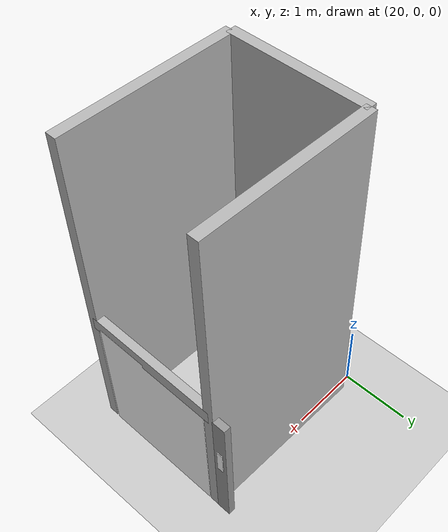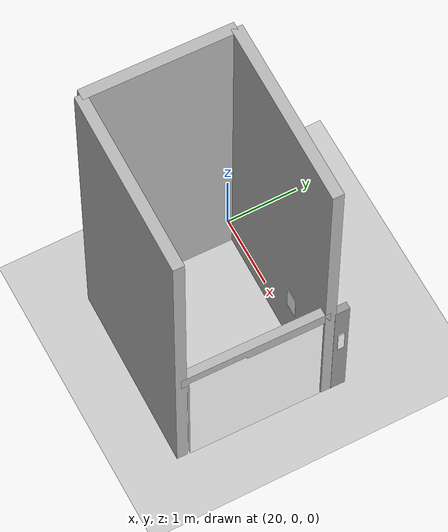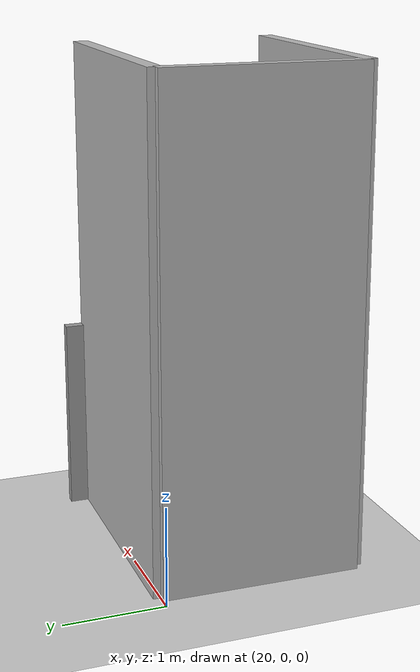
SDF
<sdf version="1.6">
 <world name="default">
  <model name="ground_plane">
   <static>1</static>
   <link name="link">
    <collision name="collision">
     <geometry><plane><normal>0 0 1</normal><size>100 100</size></plane></geometry>
     <surface><friction><ode><mu>100</mu><mu2>50</mu2></ode></friction></surface>
    </collision>
    <visual name="visual">
     <cast_shadows>0</cast_shadows>
     <geometry><plane><normal>0 0 1</normal><size>100 100</size></plane></geometry>
     <material>
      <script><uri>file://media/materials/scripts/gazebo.material</uri><name>Gazebo/Grey</name></script>
     </material>
    </visual>
   </link>
  </model>
  <model name="elevator_shaft">
   <link name="elevator_shaft">
    <pose>-1.72355 0.224232 0 0 0 -1.5708</pose>
    <inertial>
     <mass>1</mass>
     <inertia><ixx>1</ixx><ixy>0</ixy><ixz>0</ixz><iyy>1</iyy><iyz>0</iyz><izz>1</izz></inertia>
    </inertial>
    <visual name="shaft_wall3_visual">
     <pose>-1.25 0 2.4774 0 -0 0</pose>
     <geometry><box><size>0.15 2 4.95479</size></box></geometry>
     <material><shader type="pixel"><normal_map>__default__</normal_map></shader></material>
    </visual>
    <visual name="shaft_wall2_visual">
     <pose>0 -1 2.4774 0 -0 0</pose>
     <geometry><box><size>2.5 0.15 4.95479</size></box></geometry>
     <material><shader type="pixel"><normal_map>__default__</normal_map></shader></material>
    </visual>
    <visual name="shaft_wall1_visual">
     <pose>0 1 2.4774 0 -0 0</pose>
     <geometry><box><size>2.5 0.15 4.95479</size></box></geometry>
     <material><shader type="pixel"><normal_map>__default__</normal_map></shader></material>
    </visual>
    <visual name="floor1_visual">
     <pose>1.19 0 2 0 -0 0</pose>
     <geometry><box><size>0.12 2 0.2</size></box></geometry>
     <material><shader type="pixel"><normal_map>__default__</normal_map></shader></material>
    </visual>
    <collision name="floor1_collision">
     <pose>1.19 0 2 0 -0 0</pose>
     <geometry><box><size>0.12 2 0.2</size></box></geometry>
     <surface>
      <friction>
       <ode><mu>1</mu><mu2>1</mu2><fdir1>0 0 0</fdir1><slip1>0</slip1><slip2>0</slip2></ode>
       <torsional>
        <coefficient>1</coefficient>
        <patch_radius>0</patch_radius>
        <surface_radius>0</surface_radius>
        <use_patch_radius>1</use_patch_radius>
        <ode><slip>0</slip></ode>
       </torsional>
      </friction>
      <bounce><restitution_coefficient>0</restitution_coefficient><threshold>1e+06</threshold></bounce>
      <contact>
       <collide_without_contact>0</collide_without_contact>
       <collide_without_contact_bitmask>1</collide_without_contact_bitmask>
       <collide_bitmask>1</collide_bitmask>
       <ode>
        <soft_cfm>0</soft_cfm>
        <soft_erp>0.2</soft_erp>
        <kp>1e+13</kp>
        <kd>1</kd>
        <max_vel>0.01</max_vel>
        <min_depth>0</min_depth>
       </ode>
       <bullet>
        <split_impulse>1</split_impulse>
        <split_impulse_penetration_threshold>-0.01</split_impulse_penetration_threshold>
        <soft_cfm>0</soft_cfm>
        <soft_erp>0.2</soft_erp>
        <kp>1e+13</kp>
        <kd>1</kd>
       </bullet>
      </contact>
     </surface>
    </collision>
    <collision name="shaft_wall3_collision">
     <pose>-1.25 0 2.4774 0 -0 0</pose>
     <geometry><box><size>0.15 2 4.95479</size></box></geometry>
     <surface>
      <friction>
       <ode><mu>1</mu><mu2>1</mu2><fdir1>0 0 0</fdir1><slip1>0</slip1><slip2>0</slip2></ode>
       <torsional>
        <coefficient>1</coefficient>
        <patch_radius>0</patch_radius>
        <surface_radius>0</surface_radius>
        <use_patch_radius>1</use_patch_radius>
        <ode><slip>0</slip></ode>
       </torsional>
      </friction>
      <bounce><restitution_coefficient>0</restitution_coefficient><threshold>1e+06</threshold></bounce>
      <contact>
       <collide_without_contact>0</collide_without_contact>
       <collide_without_contact_bitmask>1</collide_without_contact_bitmask>
       <collide_bitmask>1</collide_bitmask>
       <ode>
        <soft_cfm>0</soft_cfm>
        <soft_erp>0.2</soft_erp>
        <kp>1e+13</kp>
        <kd>1</kd>
        <max_vel>0.01</max_vel>
        <min_depth>0</min_depth>
       </ode>
       <bullet>
        <split_impulse>1</split_impulse>
        <split_impulse_penetration_threshold>-0.01</split_impulse_penetration_threshold>
        <soft_cfm>0</soft_cfm>
        <soft_erp>0.2</soft_erp>
        <kp>1e+13</kp>
        <kd>1</kd>
       </bullet>
      </contact>
     </surface>
    </collision>
    <collision name="shaft_wall2_collision">
     <pose>0 -1 2.4774 0 -0 0</pose>
     <geometry><box><size>2.5 0.15 4.95479</size></box></geometry>
     <surface>
      <friction>
       <ode><mu>1</mu><mu2>1</mu2><fdir1>0 0 0</fdir1><slip1>0</slip1><slip2>0</slip2></ode>
       <torsional>
        <coefficient>1</coefficient>
        <patch_radius>0</patch_radius>
        <surface_radius>0</surface_radius>
        <use_patch_radius>1</use_patch_radius>
        <ode><slip>0</slip></ode>
       </torsional>
      </friction>
      <bounce><restitution_coefficient>0</restitution_coefficient><threshold>1e+06</threshold></bounce>
      <contact>
       <collide_without_contact>0</collide_without_contact>
       <collide_without_contact_bitmask>1</collide_without_contact_bitmask>
       <collide_bitmask>1</collide_bitmask>
       <ode>
        <soft_cfm>0</soft_cfm>
        <soft_erp>0.2</soft_erp>
        <kp>1e+13</kp>
        <kd>1</kd>
        <max_vel>0.01</max_vel>
        <min_depth>0</min_depth>
       </ode>
       <bullet>
        <split_impulse>1</split_impulse>
        <split_impulse_penetration_threshold>-0.01</split_impulse_penetration_threshold>
        <soft_cfm>0</soft_cfm>
        <soft_erp>0.2</soft_erp>
        <kp>1e+13</kp>
        <kd>1</kd>
       </bullet>
      </contact>
     </surface>
    </collision>
    <collision name="shaft_wall1_collision">
     <pose>0 1 2.4774 0 -0 0</pose>
     <geometry><box><size>2.5 0.15 4.95479</size></box></geometry>
     <surface>
      <friction>
       <ode><mu>1</mu><mu2>1</mu2><fdir1>0 0 0</fdir1><slip1>0</slip1><slip2>0</slip2></ode>
       <torsional>
        <coefficient>1</coefficient>
        <patch_radius>0</patch_radius>
        <surface_radius>0</surface_radius>
        <use_patch_radius>1</use_patch_radius>
        <ode><slip>0</slip></ode>
       </torsional>
      </friction>
      <bounce><restitution_coefficient>0</restitution_coefficient><threshold>1e+06</threshold></bounce>
      <contact>
       <collide_without_contact>0</collide_without_contact>
       <collide_without_contact_bitmask>1</collide_without_contact_bitmask>
       <collide_bitmask>1</collide_bitmask>
       <ode>
        <soft_cfm>0</soft_cfm>
        <soft_erp>0.2</soft_erp>
        <kp>1e+13</kp>
        <kd>1</kd>
        <max_vel>0.01</max_vel>
        <min_depth>0</min_depth>
       </ode>
       <bullet>
        <split_impulse>1</split_impulse>
        <split_impulse_penetration_threshold>-0.01</split_impulse_penetration_threshold>
        <soft_cfm>0</soft_cfm>
        <soft_erp>0.2</soft_erp>
        <kp>1e+13</kp>
        <kd>1</kd>
       </bullet>
      </contact>
     </surface>
    </collision>
   </link>
   <link name="buttons_link">
    <pose>-0.5624 -1.03258 1.29659 0 -0 0</pose>
    <inertial>
     <mass>1</mass>
     <inertia>
      <ixx>0.166667</ixx>
      <ixy>0</ixy>
      <ixz>0</ixz>
      <iyy>0.166667</iyy>
      <iyz>0</iyz>
      <izz>0.166667</izz>
     </inertia>
    </inertial>
    <visual name="visual">
     <pose>0 0 -0.08 0 -0 0</pose>
     <geometry><box><size>0.09 0.01 0.36</size></box></geometry>
     <material>
      <script>
       <uri>model://elevator_shaft/materials/scripts</uri>
       <uri>model://elevator_shaft/materials/textures</uri>
       <name>Up_down/Diffuse</name>
      </script>
      <shader type="pixel"><normal_map>__default__</normal_map></shader>
      <ambient>1 1 1 1</ambient>
      <diffuse>1 1 1 1</diffuse>
      <specular>0 0 0 1</specular>
      <emissive>0 0 0 1</emissive>
     </material>
    </visual>
    <collision name="collision">
     <pose>0 0 -0.08 0 -0 0</pose>
     <geometry><box><size>0.09 0.01 0.36</size></box></geometry>
     <surface>
      <friction>
       <ode><mu>1</mu><mu2>1</mu2><fdir1>0 0 0</fdir1><slip1>0</slip1><slip2>0</slip2></ode>
       <torsional>
        <coefficient>1</coefficient>
        <patch_radius>0</patch_radius>
        <surface_radius>0</surface_radius>
        <use_patch_radius>1</use_patch_radius>
        <ode><slip>0</slip></ode>
       </torsional>
      </friction>
      <bounce><restitution_coefficient>0</restitution_coefficient><threshold>1e+06</threshold></bounce>
      <contact>
       <collide_without_contact>0</collide_without_contact>
       <collide_without_contact_bitmask>1</collide_without_contact_bitmask>
       <collide_bitmask>1</collide_bitmask>
       <ode>
        <soft_cfm>0</soft_cfm>
        <soft_erp>0.2</soft_erp>
        <kp>1e+13</kp>
        <kd>1</kd>
        <max_vel>0.01</max_vel>
        <min_depth>0</min_depth>
       </ode>
       <bullet>
        <split_impulse>1</split_impulse>
        <split_impulse_penetration_threshold>-0.01</split_impulse_penetration_threshold>
        <soft_cfm>0</soft_cfm>
        <soft_erp>0.2</soft_erp>
        <kp>1e+13</kp>
        <kd>1</kd>
       </bullet>
      </contact>
     </surface>
    </collision>
   </link>
   <link name="buttons_panel">
    <pose>-0.800245 -0.19994 1.00951 0 -0 0</pose>
    <inertial>
     <mass>1</mass>
     <inertia>
      <ixx>0.166667</ixx>
      <ixy>0</ixy>
      <ixz>0</ixz>
      <iyy>0.166667</iyy>
      <iyz>0</iyz>
      <izz>0.166667</izz>
     </inertia>
     <pose>0 0 0 0 -0 1.57</pose>
    </inertial>
    <visual name="visual">
     <pose>0 0 0 0 -0 1.57</pose>
     <geometry><box><size>0.2 0.01 0.4</size></box></geometry>
     <material>
      <script>
       <uri>model://elevator_shaft/materials/scripts</uri>
       <uri>model://elevator_shaft/materials/textures</uri>
       <name>Buttons_panel/Picture</name>
      </script>
      <shader type="pixel"/>
      <ambient>1 1 1 1</ambient>
      <diffuse>1 1 1 1</diffuse>
      <specular>0 0 0 1</specular>
      <emissive>0 0 0 1</emissive>
     </material>
    </visual>
    <collision name="collision">
     <pose>0 0 0 0 -0 1.57</pose>
     <geometry><box><size>0.05 0.01 0.1</size></box></geometry>
     <surface>
      <friction>
       <ode><mu>1</mu><mu2>1</mu2><fdir1>0 0 0</fdir1><slip1>0</slip1><slip2>0</slip2></ode>
       <torsional>
        <coefficient>1</coefficient>
        <patch_radius>0</patch_radius>
        <surface_radius>0</surface_radius>
        <use_patch_radius>1</use_patch_radius>
        <ode><slip>0</slip></ode>
       </torsional>
      </friction>
      <bounce><restitution_coefficient>0</restitution_coefficient><threshold>1e+06</threshold></bounce>
      <contact>
       <collide_without_contact>0</collide_without_contact>
       <collide_without_contact_bitmask>1</collide_without_contact_bitmask>
       <collide_bitmask>1</collide_bitmask>
       <ode>
        <soft_cfm>0</soft_cfm>
        <soft_erp>0.2</soft_erp>
        <kp>1e+13</kp>
        <kd>1</kd>
        <max_vel>0.01</max_vel>
        <min_depth>0</min_depth>
       </ode>
       <bullet>
        <split_impulse>1</split_impulse>
        <split_impulse_penetration_threshold>-0.01</split_impulse_penetration_threshold>
        <soft_cfm>0</soft_cfm>
        <soft_erp>0.2</soft_erp>
        <kp>1e+13</kp>
        <kd>1</kd>
       </bullet>
      </contact>
     </surface>
    </collision>
   </link>
   <link name="link_0">
    <pose>-0.562882 -0.977907 1.0001 0 -0 0</pose>
    <inertial>
     <mass>1</mass>
     <inertia>
      <ixx>0.166667</ixx>
      <ixy>0</ixy>
      <ixz>0</ixz>
      <iyy>0.166667</iyy>
      <iyz>0</iyz>
      <izz>0.166667</izz>
     </inertia>
    </inertial>
    <visual name="visual">
     <geometry><box><size>0.2 0.1 2</size></box></geometry>
     <material>
      <lighting>1</lighting>
      <script><uri>file://media/materials/scripts/gazebo.material</uri><name>Gazebo/Grey</name></script>
      <shader type="pixel"><normal_map>__default__</normal_map></shader>
      <ambient>0.3 0.3 0.3 1</ambient>
      <diffuse>0.7 0.7 0.7 1</diffuse>
      <specular>0.01 0.01 0.01 1</specular>
      <emissive>0 0 0 1</emissive>
     </material>
    </visual>
    <collision name="collision">
     <geometry><box><size>0.2 0.1 2</size></box></geometry>
     <surface>
      <friction>
       <ode><mu>1</mu><mu2>1</mu2><fdir1>0 0 0</fdir1><slip1>0</slip1><slip2>0</slip2></ode>
       <torsional>
        <coefficient>1</coefficient>
        <patch_radius>0</patch_radius>
        <surface_radius>0</surface_radius>
        <use_patch_radius>1</use_patch_radius>
        <ode><slip>0</slip></ode>
       </torsional>
      </friction>
      <bounce><restitution_coefficient>0</restitution_coefficient><threshold>1e+06</threshold></bounce>
      <contact>
       <collide_without_contact>0</collide_without_contact>
       <collide_without_contact_bitmask>1</collide_without_contact_bitmask>
       <collide_bitmask>1</collide_bitmask>
       <ode>
        <soft_cfm>0</soft_cfm>
        <soft_erp>0.2</soft_erp>
        <kp>1e+13</kp>
        <kd>1</kd>
        <max_vel>0.01</max_vel>
        <min_depth>0</min_depth>
       </ode>
       <bullet>
        <split_impulse>1</split_impulse>
        <split_impulse_penetration_threshold>-0.01</split_impulse_penetration_threshold>
        <soft_cfm>0</soft_cfm>
        <soft_erp>0.2</soft_erp>
        <kp>1e+13</kp>
        <kd>1</kd>
       </bullet>
      </contact>
     </surface>
    </collision>
   </link>
   <static>1</static>
   <pose>21.6684 0.69961 0 0 -0 1.55499</pose>
  </model>
  <model name="elevator_door">
   <link name="link">
    <pose>0.086726 -0.429033 0.450416 0 -0 0</pose>
    <inertial>
     <mass>1</mass>
     <inertia>
      <ixx>0.166667</ixx>
      <ixy>0</ixy>
      <ixz>0</ixz>
      <iyy>0.166667</iyy>
      <iyz>0</iyz>
      <izz>0.166667</izz>
     </inertia>
     <pose>0 0 0.5 0 -0 0</pose>
    </inertial>
    <visual name="visual">
     <geometry><box><size>1.8 0.05 2</size></box></geometry>
     <material>
      <script>
       <uri>model://elevator_door/materials/scripts</uri>
       <uri>model://elevator_door/materials/textures</uri>
       <name>Elevator_door/Picture</name>
      </script>
      <shader type="pixel"><normal_map>__default__</normal_map></shader>
      <ambient>1 1 1 1</ambient>
      <diffuse>1 1 1 1</diffuse>
      <specular>0 0 0 1</specular>
      <emissive>0 0 0 1</emissive>
     </material>
     <pose>0 0 0.5 0 -0 0</pose>
    </visual>
    <collision name="collision">
     <pose>0 0 0.5 0 -0 0</pose>
     <geometry><box><size>1.8 0.05 2</size></box></geometry>
     <surface>
      <friction>
       <ode><mu>1</mu><mu2>1</mu2><fdir1>0 0 0</fdir1><slip1>0</slip1><slip2>0</slip2></ode>
       <torsional>
        <coefficient>1</coefficient>
        <patch_radius>0</patch_radius>
        <surface_radius>0</surface_radius>
        <use_patch_radius>1</use_patch_radius>
        <ode><slip>0</slip></ode>
       </torsional>
      </friction>
      <bounce><restitution_coefficient>0</restitution_coefficient><threshold>1e+06</threshold></bounce>
      <contact>
       <collide_without_contact>0</collide_without_contact>
       <collide_without_contact_bitmask>1</collide_without_contact_bitmask>
       <collide_bitmask>1</collide_bitmask>
       <ode>
        <soft_cfm>0</soft_cfm>
        <soft_erp>0.2</soft_erp>
        <kp>1e+13</kp>
        <kd>1</kd>
        <max_vel>0.01</max_vel>
        <min_depth>0</min_depth>
       </ode>
       <bullet>
        <split_impulse>1</split_impulse>
        <split_impulse_penetration_threshold>-0.01</split_impulse_penetration_threshold>
        <soft_cfm>0</soft_cfm>
        <soft_erp>0.2</soft_erp>
        <kp>1e+13</kp>
        <kd>1</kd>
       </bullet>
      </contact>
     </surface>
    </collision>
   </link>
   <static>1</static>
   <pose>23.0715 -0.950449 0 0 0 -1.58296</pose>
  </model>
 </world>
</sdf>
